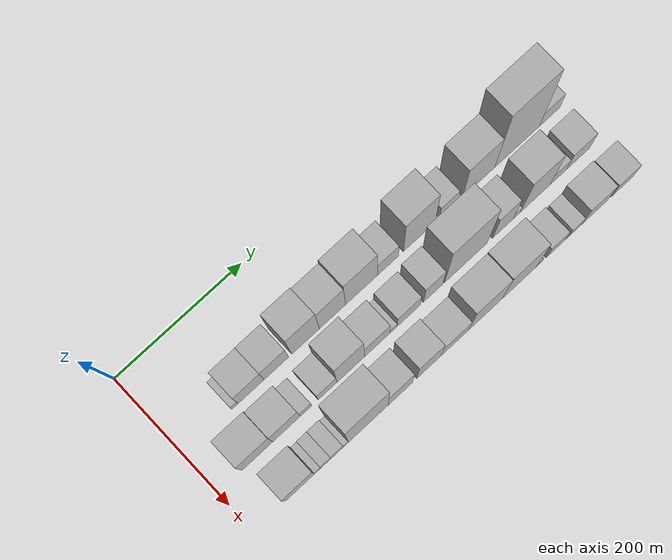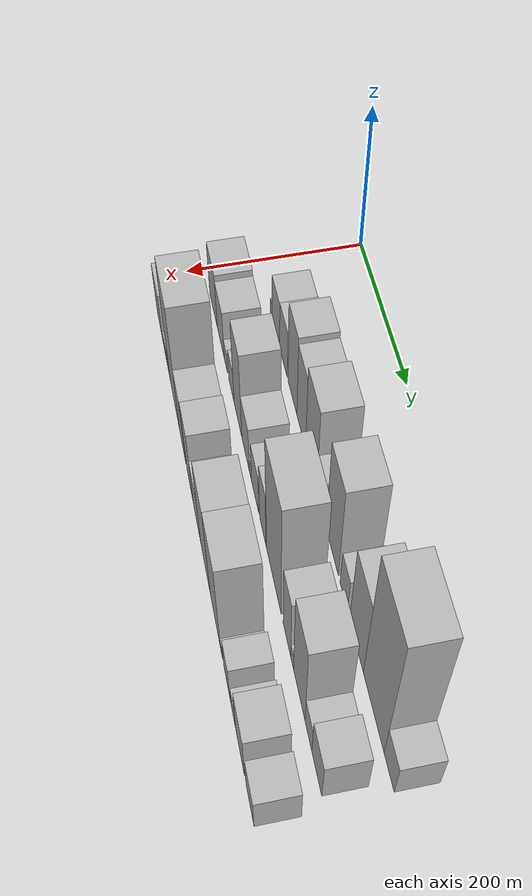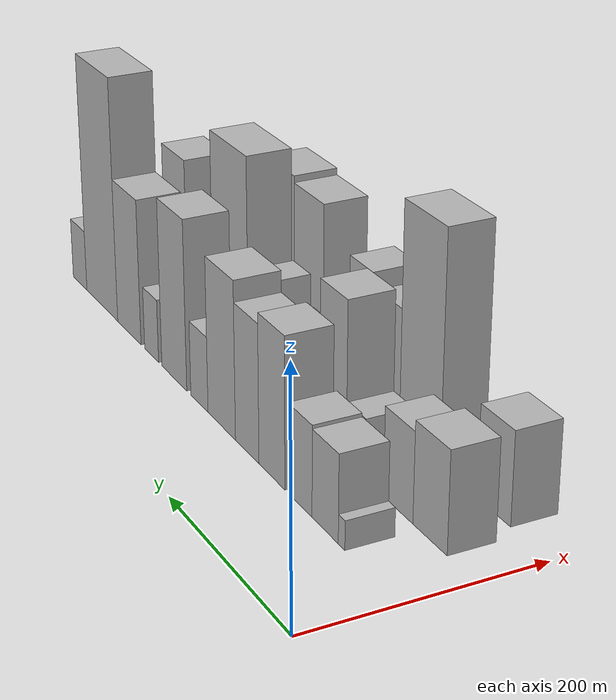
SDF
<sdf version="1.6">
 <world name="default">
  <model name="building_15">
   <static>1</static>
   <pose>100.0000 81.5761 0 0.000000 0.000000 0.000000</pose>
   <link name="link">
    <pose>0 0 12.00 0 0 0</pose>
    <collision name="collision"><geometry><box><size>40.0000 9.8357 24.0000</size></box></geometry></collision>
    <visual name="visual">
     <cast_shadows>0</cast_shadows>
     <geometry><box><size>40.0000 9.8357 24.0000</size></box></geometry>
     <material>
      <script>
       <uri>model://HANNAS_wall/materials/scripts</uri>
       <uri>model://HANNAS_wall/materials/textures</uri>
       <name>vrc/HANNAS_wall</name>
      </script>
     </material>
    </visual>
   </link>
  </model>
  <model name="building_16">
   <static>1</static>
   <pose>100.0000 106.6366 0 0.000000 0.000000 0.000000</pose>
   <link name="link">
    <pose>0 0 36.00 0 0 0</pose>
    <collision name="collision"><geometry><box><size>40.0000 40.2854 72.0000</size></box></geometry></collision>
    <visual name="visual">
     <cast_shadows>0</cast_shadows>
     <geometry><box><size>40.0000 40.2854 72.0000</size></box></geometry>
     <material>
      <script>
       <uri>model://HANNAS_wall/materials/scripts</uri>
       <uri>model://HANNAS_wall/materials/textures</uri>
       <name>vrc/HANNAS_wall</name>
      </script>
     </material>
    </visual>
   </link>
  </model>
  <model name="building_17">
   <static>1</static>
   <pose>100.0000 146.1305 0 0.000000 0.000000 0.000000</pose>
   <link name="link">
    <pose>0 0 37.50 0 0 0</pose>
    <collision name="collision"><geometry><box><size>40.0000 38.7023 75.0000</size></box></geometry></collision>
    <visual name="visual">
     <cast_shadows>0</cast_shadows>
     <geometry><box><size>40.0000 38.7023 75.0000</size></box></geometry>
     <material>
      <script>
       <uri>model://HANNAS_wall/materials/scripts</uri>
       <uri>model://HANNAS_wall/materials/textures</uri>
       <name>vrc/HANNAS_wall</name>
      </script>
     </material>
    </visual>
   </link>
  </model>
  <model name="building_18">
   <static>1</static>
   <pose>100.0000 192.3931 0 0.000000 0.000000 0.000000</pose>
   <link name="link">
    <pose>0 0 63.00 0 0 0</pose>
    <collision name="collision"><geometry><box><size>40.0000 43.8229 126.0000</size></box></geometry></collision>
    <visual name="visual">
     <cast_shadows>0</cast_shadows>
     <geometry><box><size>40.0000 43.8229 126.0000</size></box></geometry>
     <material>
      <script>
       <uri>model://HANNAS_wall/materials/scripts</uri>
       <uri>model://HANNAS_wall/materials/textures</uri>
       <name>vrc/HANNAS_wall</name>
      </script>
     </material>
    </visual>
   </link>
  </model>
  <model name="building_19">
   <static>1</static>
   <pose>100.0000 235.1371 0 0.000000 0.000000 0.000000</pose>
   <link name="link">
    <pose>0 0 58.50 0 0 0</pose>
    <collision name="collision"><geometry><box><size>40.0000 41.6652 117.0000</size></box></geometry></collision>
    <visual name="visual">
     <cast_shadows>0</cast_shadows>
     <geometry><box><size>40.0000 41.6652 117.0000</size></box></geometry>
     <material>
      <script>
       <uri>model://HANNAS_wall/materials/scripts</uri>
       <uri>model://HANNAS_wall/materials/textures</uri>
       <name>vrc/HANNAS_wall</name>
      </script>
     </material>
    </visual>
   </link>
  </model>
  <model name="building_20">
   <static>1</static>
   <pose>100.0000 281.5150 0 0.000000 0.000000 0.000000</pose>
   <link name="link">
    <pose>0 0 67.50 0 0 0</pose>
    <collision name="collision"><geometry><box><size>40.0000 51.0905 135.0000</size></box></geometry></collision>
    <visual name="visual">
     <cast_shadows>0</cast_shadows>
     <geometry><box><size>40.0000 51.0905 135.0000</size></box></geometry>
     <material>
      <script>
       <uri>model://HANNAS_wall/materials/scripts</uri>
       <uri>model://HANNAS_wall/materials/textures</uri>
       <name>vrc/HANNAS_wall</name>
      </script>
     </material>
    </visual>
   </link>
  </model>
  <model name="building_21">
   <static>1</static>
   <pose>100.0000 323.8223 0 0.000000 0.000000 0.000000</pose>
   <link name="link">
    <pose>0 0 33.00 0 0 0</pose>
    <collision name="collision"><geometry><box><size>40.0000 33.5241 66.0000</size></box></geometry></collision>
    <visual name="visual">
     <cast_shadows>0</cast_shadows>
     <geometry><box><size>40.0000 33.5241 66.0000</size></box></geometry>
     <material>
      <script>
       <uri>model://HANNAS_wall/materials/scripts</uri>
       <uri>model://HANNAS_wall/materials/textures</uri>
       <name>vrc/HANNAS_wall</name>
      </script>
     </material>
    </visual>
   </link>
  </model>
  <model name="building_22">
   <static>1</static>
   <pose>100.0000 374.0789 0 0.000000 0.000000 0.000000</pose>
   <link name="link">
    <pose>0 0 75.00 0 0 0</pose>
    <collision name="collision"><geometry><box><size>40.0000 50.9891 150.0000</size></box></geometry></collision>
    <visual name="visual">
     <cast_shadows>0</cast_shadows>
     <geometry><box><size>40.0000 50.9891 150.0000</size></box></geometry>
     <material>
      <script>
       <uri>model://HANNAS_wall/materials/scripts</uri>
       <uri>model://HANNAS_wall/materials/textures</uri>
       <name>vrc/HANNAS_wall</name>
      </script>
     </material>
    </visual>
   </link>
  </model>
  <model name="building_23">
   <static>1</static>
   <pose>100.0000 421.5128 0 0.000000 0.000000 0.000000</pose>
   <link name="link">
    <pose>0 0 28.50 0 0 0</pose>
    <collision name="collision"><geometry><box><size>40.0000 29.8788 57.0000</size></box></geometry></collision>
    <visual name="visual">
     <cast_shadows>0</cast_shadows>
     <geometry><box><size>40.0000 29.8788 57.0000</size></box></geometry>
     <material>
      <script>
       <uri>model://HANNAS_wall/materials/scripts</uri>
       <uri>model://HANNAS_wall/materials/textures</uri>
       <name>vrc/HANNAS_wall</name>
      </script>
     </material>
    </visual>
   </link>
  </model>
  <model name="building_24">
   <static>1</static>
   <pose>100.0000 470.6569 0 0.000000 0.000000 0.000000</pose>
   <link name="link">
    <pose>0 0 66.00 0 0 0</pose>
    <collision name="collision"><geometry><box><size>40.0000 52.4093 132.0000</size></box></geometry></collision>
    <visual name="visual">
     <cast_shadows>0</cast_shadows>
     <geometry><box><size>40.0000 52.4093 132.0000</size></box></geometry>
     <material>
      <script>
       <uri>model://HANNAS_wall/materials/scripts</uri>
       <uri>model://HANNAS_wall/materials/textures</uri>
       <name>vrc/HANNAS_wall</name>
      </script>
     </material>
    </visual>
   </link>
  </model>
  <model name="building_25">
   <static>1</static>
   <pose>100.0000 533.7345 0 0.000000 0.000000 0.000000</pose>
   <link name="link">
    <pose>0 0 111.00 0 0 0</pose>
    <collision name="collision"><geometry><box><size>40.0000 73.7459 222.0000</size></box></geometry></collision>
    <visual name="visual">
     <cast_shadows>0</cast_shadows>
     <geometry><box><size>40.0000 73.7459 222.0000</size></box></geometry>
     <material>
      <script>
       <uri>model://HANNAS_wall/materials/scripts</uri>
       <uri>model://HANNAS_wall/materials/textures</uri>
       <name>vrc/HANNAS_wall</name>
      </script>
     </material>
    </visual>
   </link>
  </model>
  <model name="building_26">
   <static>1</static>
   <pose>100.0000 587.5688 0 0.000000 0.000000 0.000000</pose>
   <link name="link">
    <pose>0 0 28.50 0 0 0</pose>
    <collision name="collision"><geometry><box><size>40.0000 33.9228 57.0000</size></box></geometry></collision>
    <visual name="visual">
     <cast_shadows>0</cast_shadows>
     <geometry><box><size>40.0000 33.9228 57.0000</size></box></geometry>
     <material>
      <script>
       <uri>model://HANNAS_wall/materials/scripts</uri>
       <uri>model://HANNAS_wall/materials/textures</uri>
       <name>vrc/HANNAS_wall</name>
      </script>
     </material>
    </visual>
   </link>
  </model>
  <model name="building_40">
   <static>1</static>
   <pose>160.0000 62.1663 0 0.000000 0.000000 0.000000</pose>
   <link name="link">
    <pose>0 0 42.00 0 0 0</pose>
    <collision name="collision"><geometry><box><size>40.0000 47.8087 84.0000</size></box></geometry></collision>
    <visual name="visual">
     <cast_shadows>0</cast_shadows>
     <geometry><box><size>40.0000 47.8087 84.0000</size></box></geometry>
     <material>
      <script>
       <uri>model://HANNAS_wall/materials/scripts</uri>
       <uri>model://HANNAS_wall/materials/textures</uri>
       <name>vrc/HANNAS_wall</name>
      </script>
     </material>
    </visual>
   </link>
  </model>
  <model name="building_41">
   <static>1</static>
   <pose>160.0000 107.5418 0 0.000000 0.000000 0.000000</pose>
   <link name="link">
    <pose>0 0 37.50 0 0 0</pose>
    <collision name="collision"><geometry><box><size>40.0000 42.9423 75.0000</size></box></geometry></collision>
    <visual name="visual">
     <cast_shadows>0</cast_shadows>
     <geometry><box><size>40.0000 42.9423 75.0000</size></box></geometry>
     <material>
      <script>
       <uri>model://HANNAS_wall/materials/scripts</uri>
       <uri>model://HANNAS_wall/materials/textures</uri>
       <name>vrc/HANNAS_wall</name>
      </script>
     </material>
    </visual>
   </link>
  </model>
  <model name="building_42">
   <static>1</static>
   <pose>160.0000 138.0352 0 0.000000 0.000000 0.000000</pose>
   <link name="link">
    <pose>0 0 16.50 0 0 0</pose>
    <collision name="collision"><geometry><box><size>40.0000 18.0444 33.0000</size></box></geometry></collision>
    <visual name="visual">
     <cast_shadows>0</cast_shadows>
     <geometry><box><size>40.0000 18.0444 33.0000</size></box></geometry>
     <material>
      <script>
       <uri>model://HANNAS_wall/materials/scripts</uri>
       <uri>model://HANNAS_wall/materials/textures</uri>
       <name>vrc/HANNAS_wall</name>
      </script>
     </material>
    </visual>
   </link>
  </model>
  <model name="building_43">
   <static>1</static>
   <pose>160.0000 171.9871 0 0.000000 0.000000 0.000000</pose>
   <link name="link">
    <pose>0 0 25.50 0 0 0</pose>
    <collision name="collision"><geometry><box><size>40.0000 29.8594 51.0000</size></box></geometry></collision>
    <visual name="visual">
     <cast_shadows>0</cast_shadows>
     <geometry><box><size>40.0000 29.8594 51.0000</size></box></geometry>
     <material>
      <script>
       <uri>model://HANNAS_wall/materials/scripts</uri>
       <uri>model://HANNAS_wall/materials/textures</uri>
       <name>vrc/HANNAS_wall</name>
      </script>
     </material>
    </visual>
   </link>
  </model>
  <model name="building_44">
   <static>1</static>
   <pose>160.0000 208.7328 0 0.000000 0.000000 0.000000</pose>
   <link name="link">
    <pose>0 0 67.50 0 0 0</pose>
    <collision name="collision"><geometry><box><size>40.0000 43.6321 135.0000</size></box></geometry></collision>
    <visual name="visual">
     <cast_shadows>0</cast_shadows>
     <geometry><box><size>40.0000 43.6321 135.0000</size></box></geometry>
     <material>
      <script>
       <uri>model://HANNAS_wall/materials/scripts</uri>
       <uri>model://HANNAS_wall/materials/textures</uri>
       <name>vrc/HANNAS_wall</name>
      </script>
     </material>
    </visual>
   </link>
  </model>
  <model name="building_45">
   <static>1</static>
   <pose>160.0000 250.6235 0 0.000000 0.000000 0.000000</pose>
   <link name="link">
    <pose>0 0 36.00 0 0 0</pose>
    <collision name="collision"><geometry><box><size>40.0000 40.1493 72.0000</size></box></geometry></collision>
    <visual name="visual">
     <cast_shadows>0</cast_shadows>
     <geometry><box><size>40.0000 40.1493 72.0000</size></box></geometry>
     <material>
      <script>
       <uri>model://HANNAS_wall/materials/scripts</uri>
       <uri>model://HANNAS_wall/materials/textures</uri>
       <name>vrc/HANNAS_wall</name>
      </script>
     </material>
    </visual>
   </link>
  </model>
  <model name="building_46">
   <static>1</static>
   <pose>160.0000 276.4635 0 0.000000 0.000000 0.000000</pose>
   <link name="link">
    <pose>0 0 12.00 0 0 0</pose>
    <collision name="collision"><geometry><box><size>40.0000 11.5308 24.0000</size></box></geometry></collision>
    <visual name="visual">
     <cast_shadows>0</cast_shadows>
     <geometry><box><size>40.0000 11.5308 24.0000</size></box></geometry>
     <material>
      <script>
       <uri>model://HANNAS_wall/materials/scripts</uri>
       <uri>model://HANNAS_wall/materials/textures</uri>
       <name>vrc/HANNAS_wall</name>
      </script>
     </material>
    </visual>
   </link>
  </model>
  <model name="building_47">
   <static>1</static>
   <pose>160.0000 300.7498 0 0.000000 0.000000 0.000000</pose>
   <link name="link">
    <pose>0 0 33.00 0 0 0</pose>
    <collision name="collision"><geometry><box><size>40.0000 37.0416 66.0000</size></box></geometry></collision>
    <visual name="visual">
     <cast_shadows>0</cast_shadows>
     <geometry><box><size>40.0000 37.0416 66.0000</size></box></geometry>
     <material>
      <script>
       <uri>model://HANNAS_wall/materials/scripts</uri>
       <uri>model://HANNAS_wall/materials/textures</uri>
       <name>vrc/HANNAS_wall</name>
      </script>
     </material>
    </visual>
   </link>
  </model>
  <model name="building_48">
   <static>1</static>
   <pose>160.0000 339.7431 0 0.000000 0.000000 0.000000</pose>
   <link name="link">
    <pose>0 0 46.50 0 0 0</pose>
    <collision name="collision"><geometry><box><size>40.0000 30.9451 93.0000</size></box></geometry></collision>
    <visual name="visual">
     <cast_shadows>0</cast_shadows>
     <geometry><box><size>40.0000 30.9451 93.0000</size></box></geometry>
     <material>
      <script>
       <uri>model://HANNAS_wall/materials/scripts</uri>
       <uri>model://HANNAS_wall/materials/textures</uri>
       <name>vrc/HANNAS_wall</name>
      </script>
     </material>
    </visual>
   </link>
  </model>
  <model name="building_49">
   <static>1</static>
   <pose>160.0000 392.7881 0 0.000000 0.000000 0.000000</pose>
   <link name="link">
    <pose>0 0 94.50 0 0 0</pose>
    <collision name="collision"><geometry><box><size>40.0000 69.1449 189.0000</size></box></geometry></collision>
    <visual name="visual">
     <cast_shadows>0</cast_shadows>
     <geometry><box><size>40.0000 69.1449 189.0000</size></box></geometry>
     <material>
      <script>
       <uri>model://HANNAS_wall/materials/scripts</uri>
       <uri>model://HANNAS_wall/materials/textures</uri>
       <name>vrc/HANNAS_wall</name>
      </script>
     </material>
    </visual>
   </link>
  </model>
  <model name="building_50">
   <static>1</static>
   <pose>160.0000 453.0689 0 0.000000 0.000000 0.000000</pose>
   <link name="link">
    <pose>0 0 52.50 0 0 0</pose>
    <collision name="collision"><geometry><box><size>40.0000 33.4167 105.0000</size></box></geometry></collision>
    <visual name="visual">
     <cast_shadows>0</cast_shadows>
     <geometry><box><size>40.0000 33.4167 105.0000</size></box></geometry>
     <material>
      <script>
       <uri>model://HANNAS_wall/materials/scripts</uri>
       <uri>model://HANNAS_wall/materials/textures</uri>
       <name>vrc/HANNAS_wall</name>
      </script>
     </material>
    </visual>
   </link>
  </model>
  <model name="building_51">
   <static>1</static>
   <pose>160.0000 475.8900 0 0.000000 0.000000 0.000000</pose>
   <link name="link">
    <pose>0 0 13.50 0 0 0</pose>
    <collision name="collision"><geometry><box><size>40.0000 12.2254 27.0000</size></box></geometry></collision>
    <visual name="visual">
     <cast_shadows>0</cast_shadows>
     <geometry><box><size>40.0000 12.2254 27.0000</size></box></geometry>
     <material>
      <script>
       <uri>model://HANNAS_wall/materials/scripts</uri>
       <uri>model://HANNAS_wall/materials/textures</uri>
       <name>vrc/HANNAS_wall</name>
      </script>
     </material>
    </visual>
   </link>
  </model>
  <model name="building_52">
   <static>1</static>
   <pose>160.0000 505.9593 0 0.000000 0.000000 0.000000</pose>
   <link name="link">
    <pose>0 0 72.00 0 0 0</pose>
    <collision name="collision"><geometry><box><size>40.0000 47.9131 144.0000</size></box></geometry></collision>
    <visual name="visual">
     <cast_shadows>0</cast_shadows>
     <geometry><box><size>40.0000 47.9131 144.0000</size></box></geometry>
     <material>
      <script>
       <uri>model://HANNAS_wall/materials/scripts</uri>
       <uri>model://HANNAS_wall/materials/textures</uri>
       <name>vrc/HANNAS_wall</name>
      </script>
     </material>
    </visual>
   </link>
  </model>
  <model name="building_53">
   <static>1</static>
   <pose>160.0000 543.6667 0 0.000000 0.000000 0.000000</pose>
   <link name="link">
    <pose>0 0 24.00 0 0 0</pose>
    <collision name="collision"><geometry><box><size>40.0000 27.5017 48.0000</size></box></geometry></collision>
    <visual name="visual">
     <cast_shadows>0</cast_shadows>
     <geometry><box><size>40.0000 27.5017 48.0000</size></box></geometry>
     <material>
      <script>
       <uri>model://HANNAS_wall/materials/scripts</uri>
       <uri>model://HANNAS_wall/materials/textures</uri>
       <name>vrc/HANNAS_wall</name>
      </script>
     </material>
    </visual>
   </link>
  </model>
  <model name="building_54">
   <static>1</static>
   <pose>160.0000 576.5250 0 0.000000 0.000000 0.000000</pose>
   <link name="link">
    <pose>0 0 34.50 0 0 0</pose>
    <collision name="collision"><geometry><box><size>40.0000 38.2151 69.0000</size></box></geometry></collision>
    <visual name="visual">
     <cast_shadows>0</cast_shadows>
     <geometry><box><size>40.0000 38.2151 69.0000</size></box></geometry>
     <material>
      <script>
       <uri>model://HANNAS_wall/materials/scripts</uri>
       <uri>model://HANNAS_wall/materials/textures</uri>
       <name>vrc/HANNAS_wall</name>
      </script>
     </material>
    </visual>
   </link>
  </model>
  <model name="building_72">
   <static>1</static>
   <pose>220.0000 73.7446 0 0.000000 0.000000 0.000000</pose>
   <link name="link">
    <pose>0 0 39.00 0 0 0</pose>
    <collision name="collision"><geometry><box><size>40.0000 45.5774 78.0000</size></box></geometry></collision>
    <visual name="visual">
     <cast_shadows>0</cast_shadows>
     <geometry><box><size>40.0000 45.5774 78.0000</size></box></geometry>
     <material>
      <script>
       <uri>model://HANNAS_wall/materials/scripts</uri>
       <uri>model://HANNAS_wall/materials/textures</uri>
       <name>vrc/HANNAS_wall</name>
      </script>
     </material>
    </visual>
   </link>
  </model>
  <model name="building_73">
   <static>1</static>
   <pose>220.0000 101.3705 0 0.000000 0.000000 0.000000</pose>
   <link name="link">
    <pose>0 0 10.50 0 0 0</pose>
    <collision name="collision"><geometry><box><size>40.0000 9.6745 21.0000</size></box></geometry></collision>
    <visual name="visual">
     <cast_shadows>0</cast_shadows>
     <geometry><box><size>40.0000 9.6745 21.0000</size></box></geometry>
     <material>
      <script>
       <uri>model://HANNAS_wall/materials/scripts</uri>
       <uri>model://HANNAS_wall/materials/textures</uri>
       <name>vrc/HANNAS_wall</name>
      </script>
     </material>
    </visual>
   </link>
  </model>
  <model name="building_74">
   <static>1</static>
   <pose>220.0000 114.1271 0 0.000000 0.000000 0.000000</pose>
   <link name="link">
    <pose>0 0 15.00 0 0 0</pose>
    <collision name="collision"><geometry><box><size>40.0000 15.8387 30.0000</size></box></geometry></collision>
    <visual name="visual">
     <cast_shadows>0</cast_shadows>
     <geometry><box><size>40.0000 15.8387 30.0000</size></box></geometry>
     <material>
      <script>
       <uri>model://HANNAS_wall/materials/scripts</uri>
       <uri>model://HANNAS_wall/materials/textures</uri>
       <name>vrc/HANNAS_wall</name>
      </script>
     </material>
    </visual>
   </link>
  </model>
  <model name="building_75">
   <static>1</static>
   <pose>220.0000 131.7252 0 0.000000 0.000000 0.000000</pose>
   <link name="link">
    <pose>0 0 16.50 0 0 0</pose>
    <collision name="collision"><geometry><box><size>40.0000 19.3576 33.0000</size></box></geometry></collision>
    <visual name="visual">
     <cast_shadows>0</cast_shadows>
     <geometry><box><size>40.0000 19.3576 33.0000</size></box></geometry>
     <material>
      <script>
       <uri>model://HANNAS_wall/materials/scripts</uri>
       <uri>model://HANNAS_wall/materials/textures</uri>
       <name>vrc/HANNAS_wall</name>
      </script>
     </material>
    </visual>
   </link>
  </model>
  <model name="building_76">
   <static>1</static>
   <pose>220.0000 145.3278 0 0.000000 0.000000 0.000000</pose>
   <link name="link">
    <pose>0 0 9.00 0 0 0</pose>
    <collision name="collision"><geometry><box><size>40.0000 7.8476 18.0000</size></box></geometry></collision>
    <visual name="visual">
     <cast_shadows>0</cast_shadows>
     <geometry><box><size>40.0000 7.8476 18.0000</size></box></geometry>
     <material>
      <script>
       <uri>model://HANNAS_wall/materials/scripts</uri>
       <uri>model://HANNAS_wall/materials/textures</uri>
       <name>vrc/HANNAS_wall</name>
      </script>
     </material>
    </visual>
   </link>
  </model>
  <model name="building_77">
   <static>1</static>
   <pose>220.0000 180.4823 0 0.000000 0.000000 0.000000</pose>
   <link name="link">
    <pose>0 0 97.50 0 0 0</pose>
    <collision name="collision"><geometry><box><size>40.0000 62.4614 195.0000</size></box></geometry></collision>
    <visual name="visual">
     <cast_shadows>0</cast_shadows>
     <geometry><box><size>40.0000 62.4614 195.0000</size></box></geometry>
     <material>
      <script>
       <uri>model://HANNAS_wall/materials/scripts</uri>
       <uri>model://HANNAS_wall/materials/textures</uri>
       <name>vrc/HANNAS_wall</name>
      </script>
     </material>
    </visual>
   </link>
  </model>
  <model name="building_78">
   <static>1</static>
   <pose>220.0000 231.0400 0 0.000000 0.000000 0.000000</pose>
   <link name="link">
    <pose>0 0 52.50 0 0 0</pose>
    <collision name="collision"><geometry><box><size>40.0000 38.6540 105.0000</size></box></geometry></collision>
    <visual name="visual">
     <cast_shadows>0</cast_shadows>
     <geometry><box><size>40.0000 38.6540 105.0000</size></box></geometry>
     <material>
      <script>
       <uri>model://HANNAS_wall/materials/scripts</uri>
       <uri>model://HANNAS_wall/materials/textures</uri>
       <name>vrc/HANNAS_wall</name>
      </script>
     </material>
    </visual>
   </link>
  </model>
  <model name="building_79">
   <static>1</static>
   <pose>220.0000 276.3310 0 0.000000 0.000000 0.000000</pose>
   <link name="link">
    <pose>0 0 58.50 0 0 0</pose>
    <collision name="collision"><geometry><box><size>40.0000 37.9280 117.0000</size></box></geometry></collision>
    <visual name="visual">
     <cast_shadows>0</cast_shadows>
     <geometry><box><size>40.0000 37.9280 117.0000</size></box></geometry>
     <material>
      <script>
       <uri>model://HANNAS_wall/materials/scripts</uri>
       <uri>model://HANNAS_wall/materials/textures</uri>
       <name>vrc/HANNAS_wall</name>
      </script>
     </material>
    </visual>
   </link>
  </model>
  <model name="building_80">
   <static>1</static>
   <pose>220.0000 317.6450 0 0.000000 0.000000 0.000000</pose>
   <link name="link">
    <pose>0 0 37.50 0 0 0</pose>
    <collision name="collision"><geometry><box><size>40.0000 44.7000 75.0000</size></box></geometry></collision>
    <visual name="visual">
     <cast_shadows>0</cast_shadows>
     <geometry><box><size>40.0000 44.7000 75.0000</size></box></geometry>
     <material>
      <script>
       <uri>model://HANNAS_wall/materials/scripts</uri>
       <uri>model://HANNAS_wall/materials/textures</uri>
       <name>vrc/HANNAS_wall</name>
      </script>
     </material>
    </visual>
   </link>
  </model>
  <model name="building_81">
   <static>1</static>
   <pose>220.0000 366.7754 0 0.000000 0.000000 0.000000</pose>
   <link name="link">
    <pose>0 0 72.00 0 0 0</pose>
    <collision name="collision"><geometry><box><size>40.0000 53.5608 144.0000</size></box></geometry></collision>
    <visual name="visual">
     <cast_shadows>0</cast_shadows>
     <geometry><box><size>40.0000 53.5608 144.0000</size></box></geometry>
     <material>
      <script>
       <uri>model://HANNAS_wall/materials/scripts</uri>
       <uri>model://HANNAS_wall/materials/textures</uri>
       <name>vrc/HANNAS_wall</name>
      </script>
     </material>
    </visual>
   </link>
  </model>
  <model name="building_82">
   <static>1</static>
   <pose>220.0000 421.3698 0 0.000000 0.000000 0.000000</pose>
   <link name="link">
    <pose>0 0 75.00 0 0 0</pose>
    <collision name="collision"><geometry><box><size>40.0000 55.6281 150.0000</size></box></geometry></collision>
    <visual name="visual">
     <cast_shadows>0</cast_shadows>
     <geometry><box><size>40.0000 55.6281 150.0000</size></box></geometry>
     <material>
      <script>
       <uri>model://HANNAS_wall/materials/scripts</uri>
       <uri>model://HANNAS_wall/materials/textures</uri>
       <name>vrc/HANNAS_wall</name>
      </script>
     </material>
    </visual>
   </link>
  </model>
  <model name="building_83">
   <static>1</static>
   <pose>220.0000 454.3931 0 0.000000 0.000000 0.000000</pose>
   <link name="link">
    <pose>0 0 10.50 0 0 0</pose>
    <collision name="collision"><geometry><box><size>40.0000 10.4184 21.0000</size></box></geometry></collision>
    <visual name="visual">
     <cast_shadows>0</cast_shadows>
     <geometry><box><size>40.0000 10.4184 21.0000</size></box></geometry>
     <material>
      <script>
       <uri>model://HANNAS_wall/materials/scripts</uri>
       <uri>model://HANNAS_wall/materials/textures</uri>
       <name>vrc/HANNAS_wall</name>
      </script>
     </material>
    </visual>
   </link>
  </model>
  <model name="building_84">
   <static>1</static>
   <pose>220.0000 480.8795 0 0.000000 0.000000 0.000000</pose>
   <link name="link">
    <pose>0 0 28.50 0 0 0</pose>
    <collision name="collision"><geometry><box><size>40.0000 28.5546 57.0000</size></box></geometry></collision>
    <visual name="visual">
     <cast_shadows>0</cast_shadows>
     <geometry><box><size>40.0000 28.5546 57.0000</size></box></geometry>
     <material>
      <script>
       <uri>model://HANNAS_wall/materials/scripts</uri>
       <uri>model://HANNAS_wall/materials/textures</uri>
       <name>vrc/HANNAS_wall</name>
      </script>
     </material>
    </visual>
   </link>
  </model>
  <model name="building_85">
   <static>1</static>
   <pose>220.0000 499.1755 0 0.000000 0.000000 0.000000</pose>
   <link name="link">
    <pose>0 0 9.00 0 0 0</pose>
    <collision name="collision"><geometry><box><size>40.0000 8.0375 18.0000</size></box></geometry></collision>
    <visual name="visual">
     <cast_shadows>0</cast_shadows>
     <geometry><box><size>40.0000 8.0375 18.0000</size></box></geometry>
     <material>
      <script>
       <uri>model://HANNAS_wall/materials/scripts</uri>
       <uri>model://HANNAS_wall/materials/textures</uri>
       <name>vrc/HANNAS_wall</name>
      </script>
     </material>
    </visual>
   </link>
  </model>
  <model name="building_86">
   <static>1</static>
   <pose>220.0000 513.6350 0 0.000000 0.000000 0.000000</pose>
   <link name="link">
    <pose>0 0 19.50 0 0 0</pose>
    <collision name="collision"><geometry><box><size>40.0000 20.8815 39.0000</size></box></geometry></collision>
    <visual name="visual">
     <cast_shadows>0</cast_shadows>
     <geometry><box><size>40.0000 20.8815 39.0000</size></box></geometry>
     <material>
      <script>
       <uri>model://HANNAS_wall/materials/scripts</uri>
       <uri>model://HANNAS_wall/materials/textures</uri>
       <name>vrc/HANNAS_wall</name>
      </script>
     </material>
    </visual>
   </link>
  </model>
  <model name="building_87">
   <static>1</static>
   <pose>220.0000 545.1230 0 0.000000 0.000000 0.000000</pose>
   <link name="link">
    <pose>0 0 40.50 0 0 0</pose>
    <collision name="collision"><geometry><box><size>40.0000 42.0945 81.0000</size></box></geometry></collision>
    <visual name="visual">
     <cast_shadows>0</cast_shadows>
     <geometry><box><size>40.0000 42.0945 81.0000</size></box></geometry>
     <material>
      <script>
       <uri>model://HANNAS_wall/materials/scripts</uri>
       <uri>model://HANNAS_wall/materials/textures</uri>
       <name>vrc/HANNAS_wall</name>
      </script>
     </material>
    </visual>
   </link>
  </model>
  <model name="building_88">
   <static>1</static>
   <pose>220.0000 590.9454 0 0.000000 0.000000 0.000000</pose>
   <link name="link">
    <pose>0 0 30.00 0 0 0</pose>
    <collision name="collision"><geometry><box><size>40.0000 35.5505 60.0000</size></box></geometry></collision>
    <visual name="visual">
     <cast_shadows>0</cast_shadows>
     <geometry><box><size>40.0000 35.5505 60.0000</size></box></geometry>
     <material>
      <script>
       <uri>model://HANNAS_wall/materials/scripts</uri>
       <uri>model://HANNAS_wall/materials/textures</uri>
       <name>vrc/HANNAS_wall</name>
      </script>
     </material>
    </visual>
   </link>
  </model>
 </world>
</sdf>
